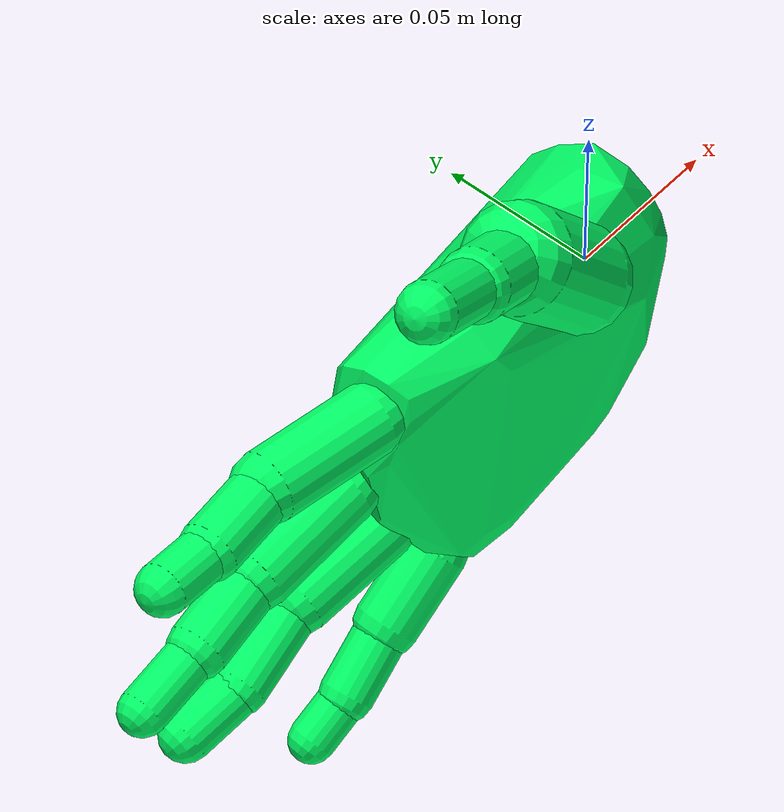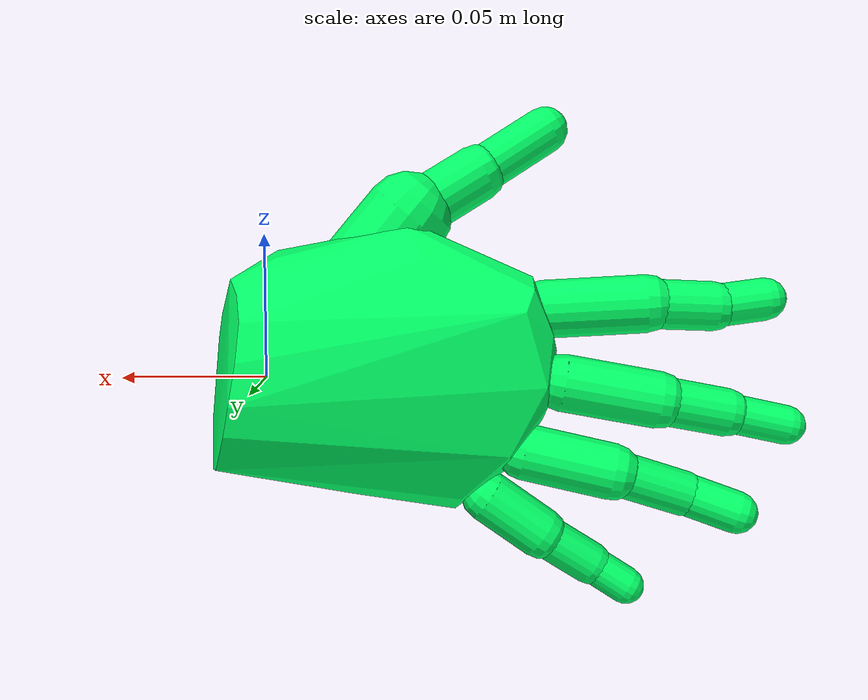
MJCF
<mujoco model="mano_hand">
  <compiler autolimits="true" angle="radian"/>
  <default>
    <geom solimp="0.5 0.95 0.001" solref="0.04 1"/>
  </default>
  <asset>
    <mesh name="mano_bone_0" file="meshes/mano_bone_0.obj"/>
    <mesh name="mano_bone_1" file="meshes/mano_bone_1.obj"/>
    <mesh name="mano_bone_2" file="meshes/mano_bone_2.obj"/>
    <mesh name="mano_bone_3" file="meshes/mano_bone_3.obj"/>
    <mesh name="mano_bone_4" file="meshes/mano_bone_4.obj"/>
    <mesh name="mano_bone_5" file="meshes/mano_bone_5.obj"/>
    <mesh name="mano_bone_6" file="meshes/mano_bone_6.obj"/>
    <mesh name="mano_bone_7" file="meshes/mano_bone_7.obj"/>
    <mesh name="mano_bone_8" file="meshes/mano_bone_8.obj"/>
    <mesh name="mano_bone_9" file="meshes/mano_bone_9.obj"/>
    <mesh name="mano_bone_10" file="meshes/mano_bone_10.obj"/>
    <mesh name="mano_bone_11" file="meshes/mano_bone_11.obj"/>
    <mesh name="mano_bone_12" file="meshes/mano_bone_12.obj"/>
    <mesh name="mano_bone_13" file="meshes/mano_bone_13.obj"/>
    <mesh name="mano_bone_14" file="meshes/mano_bone_14.obj"/>
    <mesh name="mano_bone_15" file="meshes/mano_bone_15.obj"/>
  </asset>
  <worldbody>
    <body name="mano_body_0" pos="0 0 0">
      <joint name="wrist_tx" type="slide" axis="1 0 0" pos="0 0 0" limited="false" damping="5.0"/>
      <joint name="wrist_ty" type="slide" axis="0 1 0" pos="0 0 0" limited="false" damping="5.0"/>
      <joint name="wrist_tz" type="slide" axis="0 0 1" pos="0 0 0" limited="false" damping="5.0"/>
      <joint name="wrist_rot" type="ball" pos="0 0 0" limited="false" damping="5.0" armature="0.01"/>
      <inertial pos="-0.0386404 -0.00291519 0.000663059" mass="0.303712" fullinertia="2.043058e-04 4.256455e-04 3.219984e-04 -1.802496e-05 1.892321e-06 -3.787750e-07"/>
      <geom type="mesh" mesh="mano_bone_0" pos="-0.0431646 -0.00558955 -0.00523464" rgba="0.000 1.000 0.400 1" priority="1" solimp="0.005 0.9 0.025 0.5 2"/>
    <body name="mano_body_1" pos="-0.119194 -0.00254777 0.0245757">
      <joint name="mano_joint_1" type="ball" pos="0.020372 -0.00287468 -0.00143122" limited="false" damping="0.01" armature="0.001"/>
      <inertial pos="-0.000650565 0.000798671 0.000200474" mass="0.00941371" fullinertia="5.379737e-07 1.070027e-06 1.122435e-06 2.197670e-08 -2.904316e-08 8.066921e-09"/>
      <geom type="capsule" fromto="0.020372 -0.00287468 -0.00143122 -0.0167674 0.0013332 0.000695148" size="0.0106757" rgba="0.000 1.000 0.400 1"/>
    <body name="mano_body_2" pos="-0.0306125 0.000539464 0.000874529">
      <joint name="mano_joint_2" type="ball" pos="0.0138451 0.000793737 -0.00017938" limited="false" damping="0.01" armature="0.001"/>
      <inertial pos="0.000973831 0.000468238 -0.000571935" mass="0.00474395" fullinertia="2.030476e-07 3.159752e-07 2.913657e-07 -2.235957e-08 -2.078942e-08 2.950761e-09"/>
      <geom type="capsule" fromto="0.0138451 0.000793737 -0.00017938 -0.011707 -0.0015028 -0.00129986" size="0.00906924" rgba="0.000 1.000 0.400 1"/>
    <body name="mano_body_3" pos="-0.0291726 -0.0031073 -0.00263631">
      <joint name="mano_joint_3" type="ball" pos="0.0174657 0.0016045 0.00133644" limited="false" damping="0.01" armature="0.001"/>
      <inertial pos="0.00442361 0.000324568 0.000625479" mass="0.00333982" fullinertia="9.324264e-08 2.178690e-07 2.025200e-07 -1.191803e-08 -1.172518e-08 -7.213185e-09"/>
      <geom type="capsule" fromto="0.0174657 0.0016045 0.00133644 -0.00198235 0.000727808 0.00379497" size="0.00791894" rgba="0.000 1.000 0.400 1"/>
    </body>
    </body>
    </body>
    <body name="mano_body_4" pos="-0.124441 -0.000139861 -0.00683553">
      <joint name="mano_joint_4" type="ball" pos="0.0186123 -0.00154577 0.00348796" limited="false" damping="0.01" armature="0.001"/>
      <inertial pos="0.00274051 0.000828108 0.000296863" mass="0.0106074" fullinertia="6.523244e-07 1.527032e-06 1.414476e-06 2.740915e-08 -1.897809e-07 1.432426e-09"/>
      <geom type="capsule" fromto="0.0186123 -0.00154577 0.00348796 -0.0162327 4.23993e-05 -0.00290151" size="0.0105821" rgba="0.000 1.000 0.400 1"/>
    <body name="mano_body_5" pos="-0.0331108 -0.00134674 -0.00628164">
      <joint name="mano_joint_5" type="ball" pos="0.0168782 0.00138914 0.00338013" limited="false" damping="0.01" armature="0.001"/>
      <inertial pos="0.00190613 0.000658688 0.000525438" mass="0.00435415" fullinertia="1.802653e-07 2.664858e-07 2.571517e-07 -2.979843e-08 -1.676043e-08 -1.096104e-08"/>
      <geom type="capsule" fromto="0.0168782 0.00138914 0.00338013 -0.00930922 -0.00101275 -0.00181639" size="0.0089463" rgba="0.000 1.000 0.400 1"/>
    <body name="mano_body_6" pos="-0.0280941 -0.0012038 -0.00578454">
      <joint name="mano_joint_6" type="ball" pos="0.0187849 0.000191046 0.00396816" limited="false" damping="0.01" armature="0.001"/>
      <inertial pos="0.00311421 -0.000563156 0.00107527" mass="0.00308167" fullinertia="8.889313e-08 1.776774e-07 1.634134e-07 5.138971e-09 -2.052739e-08 -2.907415e-09"/>
      <geom type="capsule" fromto="0.0187849 0.000191046 0.00396816 -0.00418566 -0.000329261 -0.00111887" size="0.0073196" rgba="0.000 1.000 0.400 1"/>
    </body>
    </body>
    </body>
    <body name="mano_body_7" pos="-0.0884598 -0.0120002 -0.0556313">
      <joint name="mano_joint_7" type="ball" pos="0.00897065 -0.00035038 0.00860781" limited="false" damping="0.01" armature="0.001"/>
      <inertial pos="-0.000219754 0.000973849 0.000465269" mass="0.00491125" fullinertia="2.512343e-07 3.246043e-07 2.776550e-07 1.199496e-08 -5.667833e-08 6.928440e-09"/>
      <geom type="capsule" fromto="0.00897065 -0.00035038 0.00860781 -0.0113592 6.21714e-05 -0.00591805" size="0.00972469" rgba="0.000 1.000 0.400 1"/>
    <body name="mano_body_8" pos="-0.0218639 0.000516498 -0.0131604">
      <joint name="mano_joint_8" type="ball" pos="0.0105047 -0.000454327 0.00724238" limited="false" damping="0.01" armature="0.001"/>
      <inertial pos="0.00111318 0.000648666 -3.11018e-05" mass="0.00346776" fullinertia="1.346100e-07 1.970855e-07 1.739072e-07 -1.522850e-08 -3.585481e-08 -1.625961e-08"/>
      <geom type="capsule" fromto="0.0105047 -0.000454327 0.00724238 -0.00890057 -0.0022024 -0.0053534" size="0.00806387" rgba="0.000 1.000 0.400 1"/>
    <body name="mano_body_9" pos="-0.0224931 -0.00386477 -0.0130909">
      <joint name="mano_joint_9" type="ball" pos="0.0135925 0.00166237 0.00773746" limited="false" damping="0.01" armature="0.001"/>
      <inertial pos="0.00239571 -2.19384e-05 0.00119536" mass="0.00201684" fullinertia="5.094980e-08 8.466256e-08 7.027142e-08 -3.200512e-09 -1.495281e-08 -2.545253e-09"/>
      <geom type="capsule" fromto="0.0135925 0.00166237 0.00773746 0.000113072 0.00294711 -0.000884914" size="0.00701251" rgba="0.000 1.000 0.400 1"/>
    </body>
    </body>
    </body>
    <body name="mano_body_10" pos="-0.105235 -0.00063011 -0.0301149">
      <joint name="mano_joint_10" type="ball" pos="0.0129401 -0.00359191 0.00118627" limited="false" damping="0.01" armature="0.001"/>
      <inertial pos="-0.000615108 0.000568695 -0.000282793" mass="0.00834485" fullinertia="4.970184e-07 8.420683e-07 8.242678e-07 1.937818e-08 -1.188927e-07 7.611680e-09"/>
      <geom type="capsule" fromto="0.0129401 -0.00359191 0.00118627 -0.0192194 0.000212724 -0.00599638" size="0.0104166" rgba="0.000 1.000 0.400 1"/>
    <body name="mano_body_11" pos="-0.033052 -0.00110418 -0.0108128">
      <joint name="mano_joint_11" type="ball" pos="0.0138326 0.0013169 0.00481646" limited="false" damping="0.01" armature="0.001"/>
      <inertial pos="0.000787222 0.000550886 -0.000204251" mass="0.00588691" fullinertia="2.705079e-07 5.566665e-07 5.393152e-07 -6.734899e-08 -9.186381e-08 -2.420603e-08"/>
      <geom type="capsule" fromto="0.0138326 0.0013169 0.00481646 -0.0141193 -0.00194065 -0.00460138" size="0.00840004" rgba="0.000 1.000 0.400 1"/>
    <body name="mano_body_12" pos="-0.0317693 -0.00208925 -0.010429">
      <joint name="mano_joint_12" type="ball" pos="0.01765 0.000148601 0.00582764" limited="false" damping="0.01" armature="0.001"/>
      <inertial pos="0.00317252 -0.00029616 0.00126592" mass="0.00318598" fullinertia="9.350693e-08 2.084514e-07 1.842880e-07 7.087743e-09 -3.663033e-08 -1.923932e-09"/>
      <geom type="capsule" fromto="0.01765 0.000148601 0.00582764 -0.00103396 0.00344553 -0.000755846" size="0.0079307" rgba="0.000 1.000 0.400 1"/>
    </body>
    </body>
    </body>
    <body name="mano_body_13" pos="-0.0355527 -0.0242737 0.0456698">
      <joint name="mano_joint_13" type="ball" pos="0.00818505 0.00584748 -0.0161816" limited="false" damping="0.01" armature="0.001"/>
      <inertial pos="0.00218142 0.00241982 -0.000937984" mass="0.0165391" fullinertia="1.936179e-06 2.851139e-06 2.828249e-06 -1.135325e-07 2.756775e-07 -5.458948e-07"/>
      <geom type="capsule" fromto="0.00818505 0.00584748 -0.0161816 -0.0150344 0.00696079 0.0114957" size="0.0162859" rgba="0.000 1.000 0.400 1"/>
    <body name="mano_body_14" pos="-0.0293025 0.00426239 0.0218859">
      <joint name="mano_joint_14" type="ball" pos="0.0142681 0.0026984 -0.0103901" limited="false" damping="0.01" armature="0.001"/>
      <inertial pos="0.00165032 0.000565615 -0.000561416" mass="0.00826501" fullinertia="5.126867e-07 7.948509e-07 7.955820e-07 -5.648890e-08 7.568228e-08 3.570270e-08"/>
      <geom type="capsule" fromto="0.0142681 0.0026984 -0.0103901 -0.0117543 -0.00352302 0.00561874" size="0.0107192" rgba="0.000 1.000 0.400 1"/>
    <body name="mano_body_15" pos="-0.0320462 -0.00857601 0.0188141">
      <joint name="mano_joint_15" type="ball" pos="0.020292 0.00505299 -0.0131954" limited="false" damping="0.01" armature="0.001"/>
      <inertial pos="0.00594981 0.0015361 -0.00332842" mass="0.00812954" fullinertia="5.808471e-07 9.351102e-07 8.317092e-07 -1.075134e-07 2.537971e-07 9.335624e-08"/>
      <geom type="capsule" fromto="0.020292 0.00505299 -0.0131954 -0.00584114 -0.00108359 0.00355395" size="0.00884554" rgba="0.000 1.000 0.400 1"/>
    </body>
    </body>
    </body>
    </body>
  </worldbody>
  <actuator>
    <position name="wrist_motor_tx" joint="wrist_tx" kp="300.0" dampratio="1.0"/>
    <position name="wrist_motor_ty" joint="wrist_ty" kp="300.0" dampratio="1.0"/>
    <position name="wrist_motor_tz" joint="wrist_tz" kp="300.0" dampratio="1.0"/>
    <position name="wrist_motor_rx" joint="wrist_rot" gear="1 0 0" kp="50.0" dampratio="1.5"/>
    <position name="wrist_motor_ry" joint="wrist_rot" gear="0 1 0" kp="50.0" dampratio="1.5"/>
    <position name="wrist_motor_rz" joint="wrist_rot" gear="0 0 1" kp="50.0" dampratio="1.5"/>
    <position name="mano_motor_1_x" joint="mano_joint_1" gear="1 0 0" kp="30.0" dampratio="1.0"/>
    <position name="mano_motor_1_y" joint="mano_joint_1" gear="0 1 0" kp="30.0" dampratio="1.0"/>
    <position name="mano_motor_1_z" joint="mano_joint_1" gear="0 0 1" kp="30.0" dampratio="1.0"/>
    <position name="mano_motor_2_x" joint="mano_joint_2" gear="1 0 0" kp="30.0" dampratio="1.0"/>
    <position name="mano_motor_2_y" joint="mano_joint_2" gear="0 1 0" kp="30.0" dampratio="1.0"/>
    <position name="mano_motor_2_z" joint="mano_joint_2" gear="0 0 1" kp="30.0" dampratio="1.0"/>
    <position name="mano_motor_3_x" joint="mano_joint_3" gear="1 0 0" kp="30.0" dampratio="1.0"/>
    <position name="mano_motor_3_y" joint="mano_joint_3" gear="0 1 0" kp="30.0" dampratio="1.0"/>
    <position name="mano_motor_3_z" joint="mano_joint_3" gear="0 0 1" kp="30.0" dampratio="1.0"/>
    <position name="mano_motor_4_x" joint="mano_joint_4" gear="1 0 0" kp="30.0" dampratio="1.0"/>
    <position name="mano_motor_4_y" joint="mano_joint_4" gear="0 1 0" kp="30.0" dampratio="1.0"/>
    <position name="mano_motor_4_z" joint="mano_joint_4" gear="0 0 1" kp="30.0" dampratio="1.0"/>
    <position name="mano_motor_5_x" joint="mano_joint_5" gear="1 0 0" kp="30.0" dampratio="1.0"/>
    <position name="mano_motor_5_y" joint="mano_joint_5" gear="0 1 0" kp="30.0" dampratio="1.0"/>
    <position name="mano_motor_5_z" joint="mano_joint_5" gear="0 0 1" kp="30.0" dampratio="1.0"/>
    <position name="mano_motor_6_x" joint="mano_joint_6" gear="1 0 0" kp="30.0" dampratio="1.0"/>
    <position name="mano_motor_6_y" joint="mano_joint_6" gear="0 1 0" kp="30.0" dampratio="1.0"/>
    <position name="mano_motor_6_z" joint="mano_joint_6" gear="0 0 1" kp="30.0" dampratio="1.0"/>
    <position name="mano_motor_7_x" joint="mano_joint_7" gear="1 0 0" kp="30.0" dampratio="1.0"/>
    <position name="mano_motor_7_y" joint="mano_joint_7" gear="0 1 0" kp="30.0" dampratio="1.0"/>
    <position name="mano_motor_7_z" joint="mano_joint_7" gear="0 0 1" kp="30.0" dampratio="1.0"/>
    <position name="mano_motor_8_x" joint="mano_joint_8" gear="1 0 0" kp="30.0" dampratio="1.0"/>
    <position name="mano_motor_8_y" joint="mano_joint_8" gear="0 1 0" kp="30.0" dampratio="1.0"/>
    <position name="mano_motor_8_z" joint="mano_joint_8" gear="0 0 1" kp="30.0" dampratio="1.0"/>
    <position name="mano_motor_9_x" joint="mano_joint_9" gear="1 0 0" kp="30.0" dampratio="1.0"/>
    <position name="mano_motor_9_y" joint="mano_joint_9" gear="0 1 0" kp="30.0" dampratio="1.0"/>
    <position name="mano_motor_9_z" joint="mano_joint_9" gear="0 0 1" kp="30.0" dampratio="1.0"/>
    <position name="mano_motor_10_x" joint="mano_joint_10" gear="1 0 0" kp="30.0" dampratio="1.0"/>
    <position name="mano_motor_10_y" joint="mano_joint_10" gear="0 1 0" kp="30.0" dampratio="1.0"/>
    <position name="mano_motor_10_z" joint="mano_joint_10" gear="0 0 1" kp="30.0" dampratio="1.0"/>
    <position name="mano_motor_11_x" joint="mano_joint_11" gear="1 0 0" kp="30.0" dampratio="1.0"/>
    <position name="mano_motor_11_y" joint="mano_joint_11" gear="0 1 0" kp="30.0" dampratio="1.0"/>
    <position name="mano_motor_11_z" joint="mano_joint_11" gear="0 0 1" kp="30.0" dampratio="1.0"/>
    <position name="mano_motor_12_x" joint="mano_joint_12" gear="1 0 0" kp="30.0" dampratio="1.0"/>
    <position name="mano_motor_12_y" joint="mano_joint_12" gear="0 1 0" kp="30.0" dampratio="1.0"/>
    <position name="mano_motor_12_z" joint="mano_joint_12" gear="0 0 1" kp="30.0" dampratio="1.0"/>
    <position name="mano_motor_13_x" joint="mano_joint_13" gear="1 0 0" kp="30.0" dampratio="1.0"/>
    <position name="mano_motor_13_y" joint="mano_joint_13" gear="0 1 0" kp="30.0" dampratio="1.0"/>
    <position name="mano_motor_13_z" joint="mano_joint_13" gear="0 0 1" kp="30.0" dampratio="1.0"/>
    <position name="mano_motor_14_x" joint="mano_joint_14" gear="1 0 0" kp="30.0" dampratio="1.0"/>
    <position name="mano_motor_14_y" joint="mano_joint_14" gear="0 1 0" kp="30.0" dampratio="1.0"/>
    <position name="mano_motor_14_z" joint="mano_joint_14" gear="0 0 1" kp="30.0" dampratio="1.0"/>
    <position name="mano_motor_15_x" joint="mano_joint_15" gear="1 0 0" kp="30.0" dampratio="1.0"/>
    <position name="mano_motor_15_y" joint="mano_joint_15" gear="0 1 0" kp="30.0" dampratio="1.0"/>
    <position name="mano_motor_15_z" joint="mano_joint_15" gear="0 0 1" kp="30.0" dampratio="1.0"/>
  </actuator>
</mujoco>
